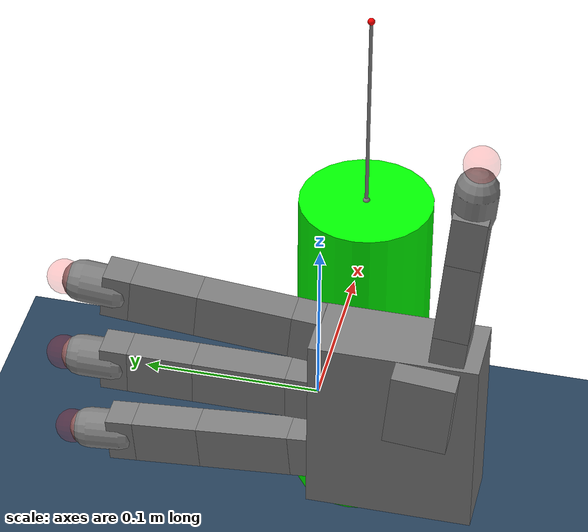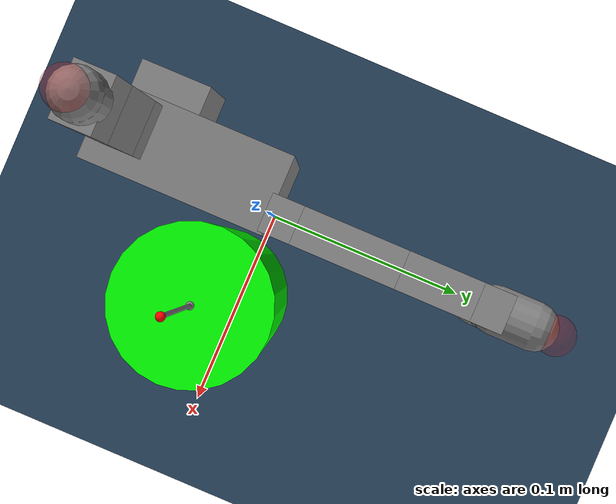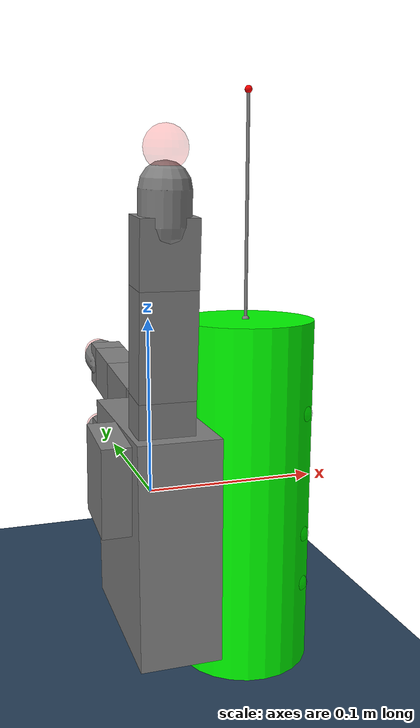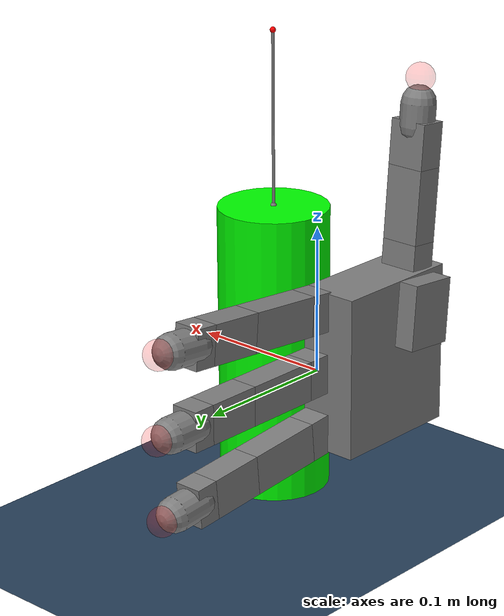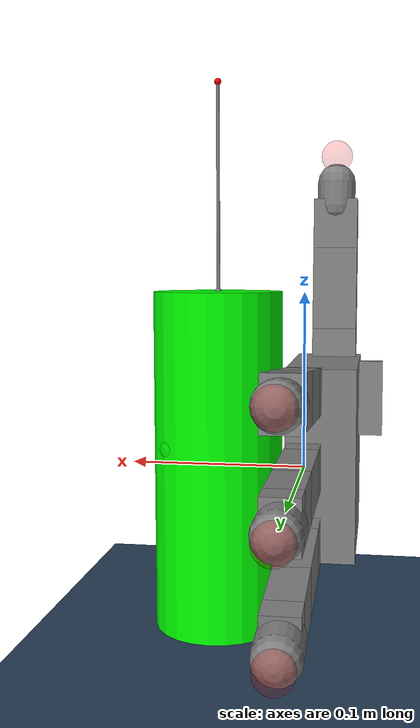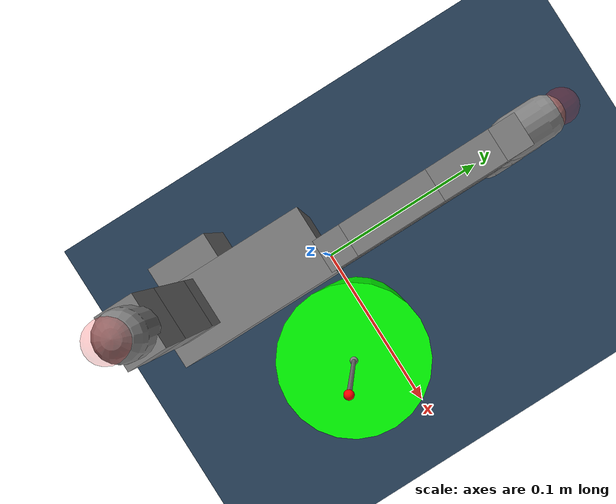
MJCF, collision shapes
<mujoco model="left_allegro_hand scene">
  <include file="left_hand.xml"/>

  <statistic center="0 0 0" extent="0.3"/>

  <visual>
    <rgba haze="0.15 0.25 0.35 1"/>
    <quality shadowsize="8192"/>
    <global azimuth="220" elevation="-40"/>
  </visual>

  <asset>
    <texture type="skybox" builtin="gradient" rgb1="0.3 0.5 0.7" rgb2="0 0 0" width="512" height="3072"/>
    <texture type="2d" name="groundplane" builtin="checker" mark="edge" rgb1="0.2 0.3 0.4" rgb2="0.1 0.2 0.3"
      markrgb="0.8 0.8 0.8" width="300" height="300"/>
    <material name="groundplane" texture="groundplane" texuniform="true" texrepeat="5 5" reflectance="0.2"/>
    <material name="target" rgba="0 1 0 0.1"/>
  </asset>

  <default>
    <default class="target">
        <geom material="target" conaffinity="0" contype="0"/>
    </default>
    <default class="target_cylinder">
        <geom rgba="0 1 0 1"/>
    </default>
  </default>

  <worldbody>
    <light pos="0 0 1"/>
    <light pos="0.3 0 1.5" dir="0 0 -1" directional="true"/>
    <geom name="floor" pos="0 0 -0.1" size="0 0 0.05" type="plane" material="groundplane"/>
    <site name="anchor" pos="0.052 -0.015 0.22" size="0.002" rgba="1 0 0 1"/>
    <body name="target" pos="0.052 -0.015 0.0">
        <freejoint/>
        <geom class="target_cylinder" name="target cylinder" type="cylinder" size="0.038 0.1" condim="6" mass="1.0"/>
        <body name="thumb_target" pos="0.025 0.025 0.01">
            <geom class="target"  type="sphere" size="0.005"/>
        </body>
        <body name="index_target" pos="0.025 -0.025 0.05">
            <geom class="target"  type="sphere" size="0.005"/>
        </body>
        <body name="middle_target" pos="0.025 -0.025 -0.02">
            <geom class="target"  type="sphere" size="0.005"/>
        </body>
        <body name="ring_target" pos="0.025 -0.025 -0.05">
            <geom class="target"  type="sphere" size="0.005"/>
        </body>
        <site size="0.002" pos="0.0 0.0 0.1" name="hook"/>
    </body>

  </worldbody>
    <tendon>
        <spatial limited="true" range="0 0.1" width="0.001">
            <site site="hook"/>
            <site site="anchor"/>
        </spatial>
    </tendon>
</mujoco>

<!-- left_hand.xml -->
<mujoco model="allegro_left">
  <compiler angle="radian" meshdir="assets" autolimits="true"/>

  <option cone="elliptic" impratio="10"/>

  <default>
    <default class="allegro_left">
      <joint axis="0 1 0" damping=".1"/>
      <position kp="1"/>
      <geom density="800"/>
      <default class="tip_top">
        <geom rgba="1 0 0 0.1" conaffinity="0" contype="0"/>
      </default>

      <default class="visual">
        <geom type="mesh" contype="0" conaffinity="0" group="2" material="black"/>
        <default class="palm_visual">
          <geom mesh="base_link"/>
        </default>
        <default class="base_visual">
          <geom mesh="link_0.0"/>
        </default>
        <default class="proximal_visual">
          <geom mesh="link_1.0"/>
        </default>
        <default class="medial_visual">
          <geom mesh="link_2.0"/>
        </default>
        <default class="distal_visual">
          <geom mesh="link_3.0"/>
        </default>
        <default class="fingertip_visual">
          <geom pos="0 0 0.0267" material="white" mesh="link_3.0_tip"/>
        </default>
        <default class="thumbtip_visual">
          <geom pos="0 0 0.0423" material="white" mesh="link_15.0_tip"/>
        </default>
      </default>

      <default class="collision">
        <geom group="3" type="box" mass="0"/>
        <default class="palm_collision">
          <geom size="0.0204 0.0565 0.0475" pos="-0.0093 0 -0.0475"/>
        </default>
        <default class="base_collision">
          <geom size="0.0098 0.01375 0.0082" pos="0 0 0.0082"/>
          <default class="thumb_base_collision">
            <geom size="0.0179 0.017 0.02275" pos="-0.0179 0.009 0.0145"/>
          </default>
        </default>
        <default class="proximal_collision">
          <geom size="0.0098 0.01375 0.027" pos="0 0 0.027"/>
          <default class="thumb_proximal_collision">
            <geom size="0.0098 0.01375 0.00885" pos="0 0 0.00885"/>
          </default>
        </default>
        <default class="medial_collision">
          <geom size="0.0098 0.01375 0.0192" pos="0 0 0.0192"/>
          <default class="thumb_medial_collision">
            <geom size="0.0098 0.01375 0.0257" pos="0 0 0.0257"/>
          </default>
        </default>
        <default class="distal_collision">
          <geom size="0.0098 0.01375 0.008" pos="0 0 0.008"/>
          <default class="thumb_distal_collision">
            <geom size="0.0098 0.01375 0.0157" pos="0 0 0.0157"/>
          </default>
        </default>
        <default class="fingertip_collision">
          <geom type="capsule" size="0.012 0.01" pos="0 0 0.019"/>
          <default class="thumbtip_collision">
            <geom type="capsule" size="0.012 0.008" pos="0 0 0.035"/>
          </default>
        </default>
      </default>

      <default class="base">
        <joint axis="0 0 1" range="-0.47 0.47"/>
        <position ctrlrange="-0.47 0.47"/>
      </default>
      <default class="palm">
        <joint type="slide" pos="0 0 0" axis="0 -1 0" range="0.0 1.0" damping="0.1"/>
        <position ctrlrange="0.0 1.0" kp="100" dampratio="1"/>
      </default>
      <default class="proximal">
        <joint range="-0.196 1.61"/>
        <position ctrlrange="-0.196 1.61"/>
      </default>
      <default class="medial">
        <joint range="-0.174 1.709"/>
        <position ctrlrange="-0.174 1.709"/>
      </default>
      <default class="distal">
        <joint range="-0.227 1.618"/>
        <position ctrlrange="-0.227 1.618"/>
      </default>
      <default class="thumb_base">
        <joint axis="1 0 0" range="0.263 1.396"/>
        <position ctrlrange="0.263 1.396"/>
      </default>
      <default class="thumb_proximal">
        <joint axis="0 0 -1" range="-0.105 1.163"/>
        <position ctrlrange="-0.105 1.163"/>
      </default>
      <default class="thumb_medial">
        <joint range="-0.189 1.644"/>
        <position ctrlrange="-0.189 1.644"/>
      </default>
      <default class="thumb_distal">
        <joint range="-0.162 1.719"/>
        <position ctrlrange="-0.162 1.719"/>
      </default>
    </default>
  </default>

  <asset>
    <material name="black" rgba="0.2 0.2 0.2 1"/>
    <material name="white" rgba="0.9 0.9 0.9 1"/>
    <material name="red" rgba="1 0 0 0.2"/>

    <mesh file="base_link_left.stl"/>
    <mesh file="link_0.0.stl"/>
    <mesh file="link_1.0.stl"/>
    <mesh file="link_2.0.stl"/>
    <mesh file="link_3.0.stl"/>
    <mesh file="link_3.0_tip.stl"/>
    <mesh file="link_12.0_left.stl"/>
    <mesh file="link_13.0.stl"/>
    <mesh file="link_14.0.stl"/>
    <mesh file="link_15.0.stl"/>
    <mesh file="link_15.0_tip.stl"/>
  </asset>

  <worldbody>
    <body name="palm" pos="0 0 0" quat="0.5 -0.5 0 0" childclass="allegro_left">
      <!--Actuator to move the hand up and down-->
      <joint name="palmj0" class="palm"/>
      <geom quat="1 -1 0 0" class="palm_visual" mesh="base_link_left"/>
      <geom class="palm_collision" name="palm_collision"/>
      <!-- Ring finger -->
      <body name="rf_base" pos="0 0.0435 -0.001542" quat="0.999048 -0.0436194 0 0">
        <joint name="rfj0" class="base"/>
        <geom class="base_visual"/>
        <geom class="base_collision" name="rf_base_collision"/>
        <body name="rf_proximal" pos="0 0 0.0164">
          <joint name="rfj1" class="proximal"/>
          <geom class="proximal_visual"/>
          <geom class="proximal_collision" name="rf_proximal_collision"/>
          <body name="rf_medial" pos="0 0 0.054">
            <joint name="rfj2" class="medial"/>
            <geom class="medial_visual"/>
            <geom class="medial_collision" name="rf_medial_collision"/>
            <body name="rf_distal" pos="0 0 0.0384">
              <joint name="rfj3" class="distal"/>
              <geom class="distal_visual"/>
              <geom class="distal_collision" name="rf_distal_collision"/>
              <body name="rf_tip">
                <geom class="fingertip_visual"/>
                <geom class="fingertip_collision" name="rf_tip_collision"/>
                <body name="rf_tip_top" pos="0 0 0.04">
                  <geom type="sphere" size="0.01" class="tip_top"/>
                </body>
              </body>
            </body>
          </body>
        </body>
      </body>
      <!-- Middle finger -->
      <body name="mf_base" pos="0 0 0.0007">
        <joint name="mfj0" class="base"/>
        <geom class="base_visual"/>
        <geom class="base_collision" name="mf_base_collision"/>
        <body name="mf_proximal" pos="0 0 0.0164">
          <joint name="mfj1" class="proximal"/>
          <geom class="proximal_visual"/>
          <geom class="proximal_collision" name="mf_proximal_collision"/>
          <body name="mf_medial" pos="0 0 0.054">
            <joint name="mfj2" class="medial"/>
            <geom class="medial_visual"/>
            <geom class="medial_collision" name="mf_medial_collision"/>
            <body name="mf_distal" pos="0 0 0.0384">
              <joint name="mfj3" class="distal"/>
              <geom class="distal_visual"/>
              <geom class="distal_collision" name="mf_distal_collision"/>
              <body name="mf_tip">
                <geom class="fingertip_visual"/>
                <geom class="fingertip_collision" name="mf_tip_collision"/>
                <body name="mf_tip_top" pos="0 0 0.04">
                    <geom type="sphere" size="0.01" class="tip_top"/>
                </body>
              </body>
            </body>
          </body>
        </body>
      </body>
      <!-- First finger -->
      <body name="ff_base" pos="0 -0.0435 -0.001542" quat="0.999048 0.0436194 0 0">
        <joint name="ffj0" class="base"/>
        <geom class="base_visual"/>
        <geom class="base_collision" name="ff_base_collision"/>
        <body name="ff_proximal" pos="0 0 0.0164">
          <joint name="ffj1" class="proximal"/>
          <geom class="proximal_visual"/>
          <geom class="proximal_collision" name="ff_proximal_collision"/>
          <body name="ff_medial" pos="0 0 0.054">
            <joint name="ffj2" class="medial"/>
            <geom class="medial_visual"/>
            <geom class="medial_collision" name="ff_medial_collision"/>
            <body name="ff_distal" pos="0 0 0.0384">
              <joint name="ffj3" class="distal"/>
              <geom class="distal_visual"/>
              <geom class="distal_collision" name="ff_distal_collision"/>
              <body name="ff_tip">
                <geom class="fingertip_visual"/>
                <geom class="fingertip_collision" name="ff_tip_collision"/>
                <body name="ff_tip_top" pos="0 0 0.04">
                    <geom type="sphere" size="0.01" class="tip_top"/>
                </body>
              </body>
            </body>
          </body>
        </body>
      </body>
      <!-- Thumb -->
      <body name="th_base" pos="-0.0182 -0.019333 -0.045987" quat="0.477714 0.521334 -0.521334 0.477714">
        <joint name="thj0" class="thumb_base"/>
        <geom quat="0 1 0 0" class="visual" mesh="link_12.0_left"/>
        <geom class="thumb_base_collision" name="th_base_collision"/>
        <body name="th_proximal" pos="-0.027 -0.005 0.0399">
          <joint name="thj1" class="thumb_proximal"/>
          <geom class="visual" mesh="link_13.0"/>
          <geom class="thumb_proximal_collision" name="th_proximal_collision"/>
          <body name="th_medial" pos="0 0 0.0177">
            <joint name="thj2" class="thumb_medial"/>
            <geom class="visual" mesh="link_14.0"/>
            <geom class="thumb_medial_collision" name="th_medial_collision"/>
            <body name="th_distal" pos="0 0 0.0514">
              <joint name="thj3" class="thumb_distal"/>
              <geom class="visual" mesh="link_15.0"/>
              <geom class="thumb_distal_collision" name="th_distal_collision"/>
              <body name="th_tip">
                <geom class="thumbtip_visual"/>
                <geom class="thumbtip_collision" name="th_tip_collision"/>
                <body name="th_tip_top" pos="0 0 0.06">
                    <geom type="sphere" size="0.01" class="tip_top"/>
                </body>
              </body>
            </body>
          </body>
        </body>
      </body>
    </body>
  </worldbody>

  <contact>
    <exclude body1="palm" body2="ff_base"/>
    <exclude body1="palm" body2="mf_base"/>
    <exclude body1="palm" body2="rf_base"/>
    <exclude body1="palm" body2="th_base"/>
    <exclude body1="palm" body2="th_proximal"/>
  </contact>

  <!--We now weld the hand to the grabbable object-->
  <actuator>
    <position name="palma0" joint="palmj0" class="palm"/>
    <motor name="ffa0" joint="ffj0" class="base" gear="1" ctrllimited="true"/>
    <motor name="ffa1" joint="ffj1" class="proximal" gear="1" ctrllimited="true"/>
    <motor name="ffa2" joint="ffj2" class="medial" gear="1" ctrllimited="true"/>
    <motor name="ffa3" joint="ffj3" class="distal" gear="1" ctrllimited="true"/>
    <motor name="mfa0" joint="mfj0" class="base" gear="1" ctrllimited="true"/>
    <motor name="mfa1" joint="mfj1" class="proximal" gear="1" ctrllimited="true"/>
    <motor name="mfa2" joint="mfj2" class="medial" gear="1" ctrllimited="true"/>
    <motor name="mfa3" joint="mfj3" class="distal" gear="1" ctrllimited="true"/>
    <motor name="rfa0" joint="rfj0" class="base" gear="1" ctrllimited="true"/>
    <motor name="rfa1" joint="rfj1" class="proximal" gear="1" ctrllimited="true"/>
    <motor name="rfa2" joint="rfj2" class="medial" gear="1" ctrllimited="true"/>
    <motor name="rfa3" joint="rfj3" class="distal" gear="1" ctrllimited="true"/>
    <motor name="tha0" joint="thj0" class="thumb_base" gear="1" ctrllimited="true"/>
    <motor name="tha1" joint="thj1" class="thumb_proximal" gear="1" ctrllimited="true"/>
    <motor name="tha2" joint="thj2" class="thumb_medial" gear="1" ctrllimited="true"/>
    <motor name="tha3" joint="thj3" class="thumb_distal" gear="1" ctrllimited="true"/>
</actuator>
</mujoco>
